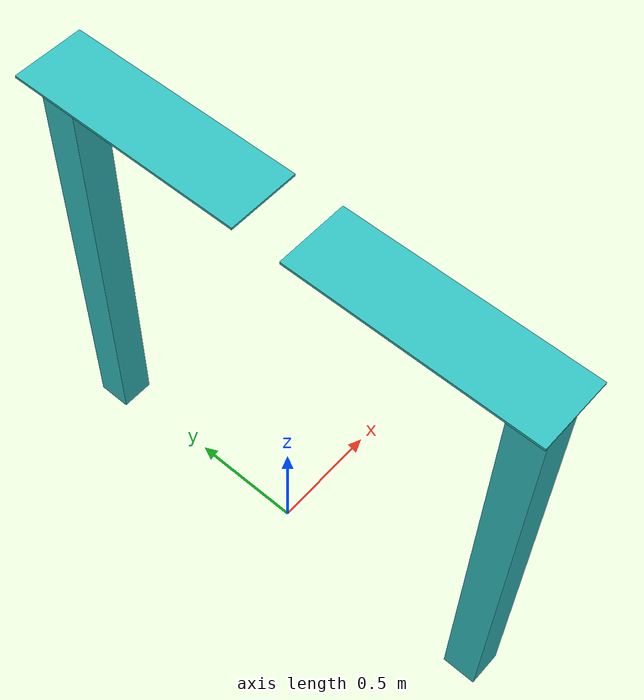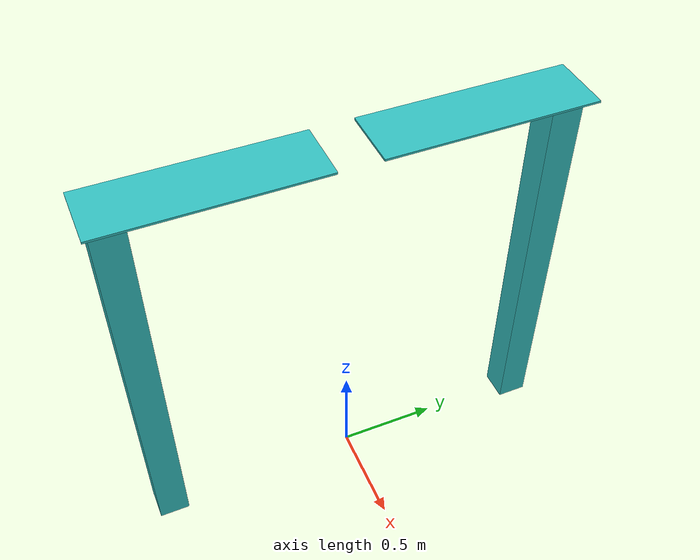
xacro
<?xml version="1.0"?>

<!-- Robot Name -->
<robot name="LiCAS_A1_launchpad" xmlns:xacro="http://ros.org/wiki/xacro">

<!-- LAUNCHPAD -->

  <link name="world" />

  <joint name="left_launchpad_joint" type="fixed">
    <origin xyz="0 1 1"/>
    <parent link="world"/>
    <child link="left_launchpad"/>
  </joint>

  <link name="left_launchpad">
    <inertial>
      <origin rpy="0 0 0" xyz="0 0 0"/>
      <mass value="1e3" />
      <inertia ixx="1e-03" ixy="0.0" ixz="0.0" iyy="1e-03" iyz="0.0" izz="1e-03"/>
    </inertial>
    <visual>
      <origin xyz="0 0 0"/>
      <geometry>
	      <box size="0.15 0.15 2"/>
      </geometry>
    </visual>
    <collision>
      <origin xyz="0 0 0"/>
      <geometry>
	      <box size="0.15 0.15 2"/>
      </geometry>
    </collision>
  </link>

  <joint name="left_launchpad_top_joint" type="fixed">
    <origin xyz="0 0 1"/>
    <parent link="left_launchpad"/>
    <child link="left_launchpad_top"/>
  </joint>

  <link name="left_launchpad_top">
    <inertial>
      <origin rpy="0 0 0" xyz="0 -0.3 0"/>
      <mass value="1e3" />
      <inertia ixx="1e-03" ixy="0.0" ixz="0.0" iyy="1e-03" iyz="0.0" izz="1e-03"/>
    </inertial>
    <visual>
      <origin xyz="0 -0.4 0"/>
      <geometry>
	      <box size="0.3 1 0.01"/>
      </geometry>
    </visual>
    <collision>
      <origin xyz="0 -0.4 0"/>
      <geometry>
	      <box size="0.3 1 0.01"/>
      </geometry>
    </collision>
  </link>

  <joint name="right_launchpad_joint" type="fixed">
    <origin xyz="0 -1 1"/>
    <parent link="world"/>
    <child link="right_launchpad"/>
  </joint>

  <link name="right_launchpad">
    <inertial>
      <origin rpy="0 0 0" xyz="0 0 0"/>
      <mass value="1e3" />
      <inertia ixx="1e-03" ixy="0.0" ixz="0.0" iyy="1e-03" iyz="0.0" izz="1e-03"/>
    </inertial>
    <visual>
      <origin xyz="0 0 0"/>
      <geometry>
	<box size="0.15 0.15 2"/>
      </geometry>
    </visual>
    <collision>
      <origin xyz="0 0 0"/>
      <geometry>
	<box size="0.15 0.15 2"/>
      </geometry>
    </collision>
  </link>

  <joint name="right_launchpad_top_joint" type="fixed">
    <origin xyz="0 0 1"/>
    <parent link="right_launchpad"/>
    <child link="right_launchpad_top"/>
  </joint>

  <link name="right_launchpad_top">
    <inertial>
      <origin rpy="0 0 0" xyz="0 0.3 0"/>
      <mass value="1e3" />
      <inertia ixx="1e-03" ixy="0.0" ixz="0.0" iyy="1e-03" iyz="0.0" izz="1e-03"/>
    </inertial>
    <visual>
      <origin xyz="0 0.4 0"/>
      <geometry>
	      <box size="0.3 1 0.01"/>
      </geometry>
    </visual>
    <collision>
      <origin xyz="0 0.4 0"/>
      <geometry>
	      <box size="0.3 1 0.01"/>
      </geometry>
    </collision>
  </link>

  <gazebo reference="left_launchpad">
    <material>Gazebo/Turquoise</material>
    <mu1>0.5</mu1>
    <mu2>0.5</mu2>
    <kp value="1e6" />
    <kd value="1e6" />
  </gazebo>

  <gazebo reference="left_launchpad_top">
    <material>Gazebo/Turquoise</material>
    <mu1>0.5</mu1>
    <mu2>0.5</mu2>
    <kp value="1e6" />
    <kd value="1e6" />
  </gazebo>

  <gazebo reference="right_launchpad">
    <material>Gazebo/Turquoise</material>
    <mu1>0.5</mu1>
    <mu2>0.5</mu2>
    <kp value="1e6" />
    <kd value="1e6" />
  </gazebo>

  <gazebo reference="right_launchpad_top">
    <material>Gazebo/Turquoise</material>
    <mu1>0.5</mu1>
    <mu2>0.5</mu2>
    <kp value="1e6" />
    <kd value="1e6" />
  </gazebo>

</robot>
